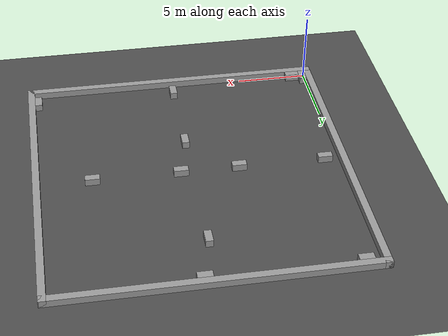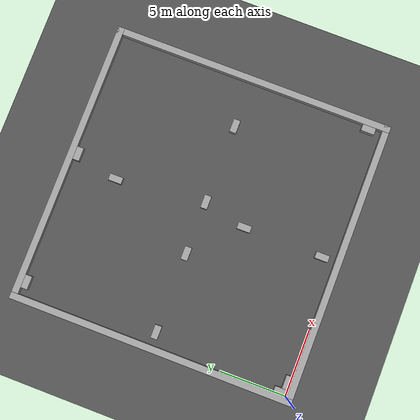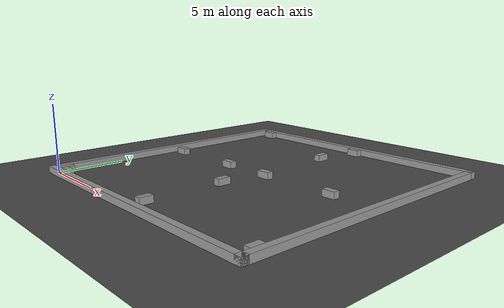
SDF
<sdf version="1.7">
 <world name="default">
  <plugin name="gazebo_ros_state" filename="libgazebo_ros_state.so"/>
  <model name="ground_plane">
   <static>1</static>
   <link name="link">
    <collision name="collision">
     <geometry><plane><normal>0 0 1</normal><size>100 100</size></plane></geometry>
    </collision>
    <visual name="visual">
     <cast_shadows>0</cast_shadows>
     <geometry><plane><normal>0 0 1</normal><size>100 100</size></plane></geometry>
     <material>
      <script><uri>file://media/materials/scripts/gazebo.material</uri><name>Gazebo/DarkGray</name></script>
     </material>
    </visual>
   </link>
  </model>
  <light name="sun" type="directional">
   <pose>0 0 3.5 0 -0 0</pose>
   <diffuse>0.25 0.25 0.25 1</diffuse>
   <direction>0 0 -1</direction>
   <attenuation><range>10</range></attenuation>
   <spot><inner_angle>0</inner_angle><outer_angle>0</outer_angle><falloff>0</falloff></spot>
  </light>
  <light name="user_point_light_0" type="point">
   <pose>0 0 3 0 -0 0</pose>
   <attenuation><linear>0.1</linear><range>10</range></attenuation>
   <cast_shadows>0</cast_shadows>
   <direction>0 0 -1</direction>
   <spot><inner_angle>0</inner_angle><outer_angle>0</outer_angle><falloff>0</falloff></spot>
  </light>
  <gravity>0 0 -9.8</gravity>
  <magnetic_field>6e-06 2.3e-05 -4.2e-05</magnetic_field>
  <atmosphere type="adiabatic"/>
  <physics type="ode">
   <max_step_size>0.001</max_step_size>
   <real_time_factor>1</real_time_factor>
   <real_time_update_rate>1000</real_time_update_rate>
  </physics>
  <scene><ambient>1 1 1 1</ambient><background>0.7 0.7 0.7 1</background><shadows>1</shadows></scene>
  <audio><device>default</device></audio>
  <spherical_coordinates>
   <surface_model>EARTH_WGS84</surface_model>
   <latitude_deg>0</latitude_deg>
   <longitude_deg>0</longitude_deg>
   <elevation>0</elevation>
   <heading_deg>0</heading_deg>
  </spherical_coordinates>
  <model name="vertical_border_wall_1">
   <pose>-0.25 10.25 0.25 0 0 0</pose>
   <link name="wall">
    <collision name="wall_collision"><geometry><box><size>0.5 21.5 0.5</size></box></geometry></collision>
    <visual name="wall_Visual">
     <geometry><box><size>0.5 21.5 0.5</size></box></geometry>
     <material>
      <script><uri>file://media/materials/scripts/gazebo.material</uri><name>Gazebo/Grey</name></script>
      <ambient>0.298039 0.298039 0.298039 1</ambient>
     </material>
     <meta><layer>0</layer></meta>
    </visual>
   </link>
   <static>1</static>
  </model>
  <model name="vertical_border_wall_2">
   <pose>20.75 10.25 0.25 0 0 0</pose>
   <link name="wall">
    <collision name="wall_collision"><geometry><box><size>0.5 21.5 0.5</size></box></geometry></collision>
    <visual name="wall_Visual">
     <geometry><box><size>0.5 21.5 0.5</size></box></geometry>
     <material>
      <script><uri>file://media/materials/scripts/gazebo.material</uri><name>Gazebo/Grey</name></script>
      <ambient>0.298039 0.298039 0.298039 1</ambient>
     </material>
     <meta><layer>0</layer></meta>
    </visual>
   </link>
   <static>1</static>
  </model>
  <model name="horizontal_border_wall_1">
   <pose>10.25 -0.25 0.25 0 0 0</pose>
   <link name="wall">
    <collision name="wall_collision"><geometry><box><size>21.5 0.5 0.5</size></box></geometry></collision>
    <visual name="wall_Visual">
     <geometry><box><size>21.5 0.5 0.5</size></box></geometry>
     <material>
      <script><uri>file://media/materials/scripts/gazebo.material</uri><name>Gazebo/Grey</name></script>
      <ambient>0.298039 0.298039 0.298039 1</ambient>
     </material>
     <meta><layer>0</layer></meta>
    </visual>
   </link>
   <static>1</static>
  </model>
  <model name="horizontal_border_wall_2">
   <pose>10.25 20.75 0.25 0 0 0</pose>
   <link name="wall">
    <collision name="wall_collision"><geometry><box><size>21.5 0.5 0.5</size></box></geometry></collision>
    <visual name="wall_Visual">
     <geometry><box><size>21.5 0.5 0.5</size></box></geometry>
     <material>
      <script><uri>file://media/materials/scripts/gazebo.material</uri><name>Gazebo/Grey</name></script>
      <ambient>0.298039 0.298039 0.298039 1</ambient>
     </material>
     <meta><layer>0</layer></meta>
    </visual>
   </link>
   <static>1</static>
  </model>
  <model name="vertical_wall_0">
   <pose>0.25 0.5 0.25 0 0 0</pose>
   <link name="wall">
    <collision name="wall_collision"><geometry><box><size>0.5 1.0 0.5</size></box></geometry></collision>
    <visual name="wall_Visual">
     <geometry><box><size>0.5 1.0 0.5</size></box></geometry>
     <material>
      <script><uri>file://media/materials/scripts/gazebo.material</uri><name>Gazebo/Grey</name></script>
      <ambient>0.298039 0.298039 0.298039 1</ambient>
     </material>
     <meta><layer>0</layer></meta>
    </visual>
   </link>
   <static>1</static>
  </model>
  <model name="horizontal_wall_0">
   <pose>1.0 0.25 0.25 0 0 0</pose>
   <link name="wall">
    <collision name="wall_collision"><geometry><box><size>1.0 0.5 0.5</size></box></geometry></collision>
    <visual name="wall_Visual">
     <geometry><box><size>1.0 0.5 0.5</size></box></geometry>
     <material>
      <script><uri>file://media/materials/scripts/gazebo.material</uri><name>Gazebo/Grey</name></script>
      <ambient>0.298039 0.298039 0.298039 1</ambient>
     </material>
     <meta><layer>0</layer></meta>
    </visual>
   </link>
   <static>1</static>
  </model>
  <model name="vertical_wall_1">
   <pose>10.25 1.0 0.25 0 0 0</pose>
   <link name="wall">
    <collision name="wall_collision"><geometry><box><size>0.5 1.0 0.5</size></box></geometry></collision>
    <visual name="wall_Visual">
     <geometry><box><size>0.5 1.0 0.5</size></box></geometry>
     <material>
      <script><uri>file://media/materials/scripts/gazebo.material</uri><name>Gazebo/Grey</name></script>
      <ambient>0.298039 0.298039 0.298039 1</ambient>
     </material>
     <meta><layer>0</layer></meta>
    </visual>
   </link>
   <static>1</static>
  </model>
  <model name="vertical_wall_2">
   <pose>20.25 1.0 0.25 0 0 0</pose>
   <link name="wall">
    <collision name="wall_collision"><geometry><box><size>0.5 1.0 0.5</size></box></geometry></collision>
    <visual name="wall_Visual">
     <geometry><box><size>0.5 1.0 0.5</size></box></geometry>
     <material>
      <script><uri>file://media/materials/scripts/gazebo.material</uri><name>Gazebo/Grey</name></script>
      <ambient>0.298039 0.298039 0.298039 1</ambient>
     </material>
     <meta><layer>0</layer></meta>
    </visual>
   </link>
   <static>1</static>
  </model>
  <model name="vertical_wall_3">
   <pose>10.25 7.0 0.25 0 0 0</pose>
   <link name="wall">
    <collision name="wall_collision"><geometry><box><size>0.5 1.0 0.5</size></box></geometry></collision>
    <visual name="wall_Visual">
     <geometry><box><size>0.5 1.0 0.5</size></box></geometry>
     <material>
      <script><uri>file://media/materials/scripts/gazebo.material</uri><name>Gazebo/Grey</name></script>
      <ambient>0.298039 0.298039 0.298039 1</ambient>
     </material>
     <meta><layer>0</layer></meta>
    </visual>
   </link>
   <static>1</static>
  </model>
  <model name="horizontal_wall_1">
   <pose>1.0 10.25 0.25 0 0 0</pose>
   <link name="wall">
    <collision name="wall_collision"><geometry><box><size>1.0 0.5 0.5</size></box></geometry></collision>
    <visual name="wall_Visual">
     <geometry><box><size>1.0 0.5 0.5</size></box></geometry>
     <material>
      <script><uri>file://media/materials/scripts/gazebo.material</uri><name>Gazebo/Grey</name></script>
      <ambient>0.298039 0.298039 0.298039 1</ambient>
     </material>
     <meta><layer>0</layer></meta>
    </visual>
   </link>
   <static>1</static>
  </model>
  <model name="horizontal_wall_2">
   <pose>7.0 10.25 0.25 0 0 0</pose>
   <link name="wall">
    <collision name="wall_collision"><geometry><box><size>1.0 0.5 0.5</size></box></geometry></collision>
    <visual name="wall_Visual">
     <geometry><box><size>1.0 0.5 0.5</size></box></geometry>
     <material>
      <script><uri>file://media/materials/scripts/gazebo.material</uri><name>Gazebo/Grey</name></script>
      <ambient>0.298039 0.298039 0.298039 1</ambient>
     </material>
     <meta><layer>0</layer></meta>
    </visual>
   </link>
   <static>1</static>
  </model>
  <model name="horizontal_wall_3">
   <pose>11.0 10.25 0.25 0 0 0</pose>
   <link name="wall">
    <collision name="wall_collision"><geometry><box><size>1.0 0.5 0.5</size></box></geometry></collision>
    <visual name="wall_Visual">
     <geometry><box><size>1.0 0.5 0.5</size></box></geometry>
     <material>
      <script><uri>file://media/materials/scripts/gazebo.material</uri><name>Gazebo/Grey</name></script>
      <ambient>0.298039 0.298039 0.298039 1</ambient>
     </material>
     <meta><layer>0</layer></meta>
    </visual>
   </link>
   <static>1</static>
  </model>
  <model name="horizontal_wall_4">
   <pose>17.0 10.25 0.25 0 0 0</pose>
   <link name="wall">
    <collision name="wall_collision"><geometry><box><size>1.0 0.5 0.5</size></box></geometry></collision>
    <visual name="wall_Visual">
     <geometry><box><size>1.0 0.5 0.5</size></box></geometry>
     <material>
      <script><uri>file://media/materials/scripts/gazebo.material</uri><name>Gazebo/Grey</name></script>
      <ambient>0.298039 0.298039 0.298039 1</ambient>
     </material>
     <meta><layer>0</layer></meta>
    </visual>
   </link>
   <static>1</static>
  </model>
  <model name="vertical_wall_4">
   <pose>10.25 17.0 0.25 0 0 0</pose>
   <link name="wall">
    <collision name="wall_collision"><geometry><box><size>0.5 1.0 0.5</size></box></geometry></collision>
    <visual name="wall_Visual">
     <geometry><box><size>0.5 1.0 0.5</size></box></geometry>
     <material>
      <script><uri>file://media/materials/scripts/gazebo.material</uri><name>Gazebo/Grey</name></script>
      <ambient>0.298039 0.298039 0.298039 1</ambient>
     </material>
     <meta><layer>0</layer></meta>
    </visual>
   </link>
   <static>1</static>
  </model>
  <model name="horizontal_wall_5">
   <pose>1.0 20.25 0.25 0 0 0</pose>
   <link name="wall">
    <collision name="wall_collision"><geometry><box><size>1.0 0.5 0.5</size></box></geometry></collision>
    <visual name="wall_Visual">
     <geometry><box><size>1.0 0.5 0.5</size></box></geometry>
     <material>
      <script><uri>file://media/materials/scripts/gazebo.material</uri><name>Gazebo/Grey</name></script>
      <ambient>0.298039 0.298039 0.298039 1</ambient>
     </material>
     <meta><layer>0</layer></meta>
    </visual>
   </link>
   <static>1</static>
  </model>
  <model name="horizontal_wall_6">
   <pose>11.0 20.25 0.25 0 0 0</pose>
   <link name="wall">
    <collision name="wall_collision"><geometry><box><size>1.0 0.5 0.5</size></box></geometry></collision>
    <visual name="wall_Visual">
     <geometry><box><size>1.0 0.5 0.5</size></box></geometry>
     <material>
      <script><uri>file://media/materials/scripts/gazebo.material</uri><name>Gazebo/Grey</name></script>
      <ambient>0.298039 0.298039 0.298039 1</ambient>
     </material>
     <meta><layer>0</layer></meta>
    </visual>
   </link>
   <static>1</static>
  </model>
  <model name="goal_marker">
   <pose>0 0 1 0 0 0</pose>
   <link name="link">
    <gravity>0</gravity>
    <visual name="visual">
     <geometry><sphere><radius>0.1</radius></sphere></geometry>
     <material><ambient>1 0 0 1</ambient></material>
    </visual>
   </link>
  </model>
 </world>
</sdf>
